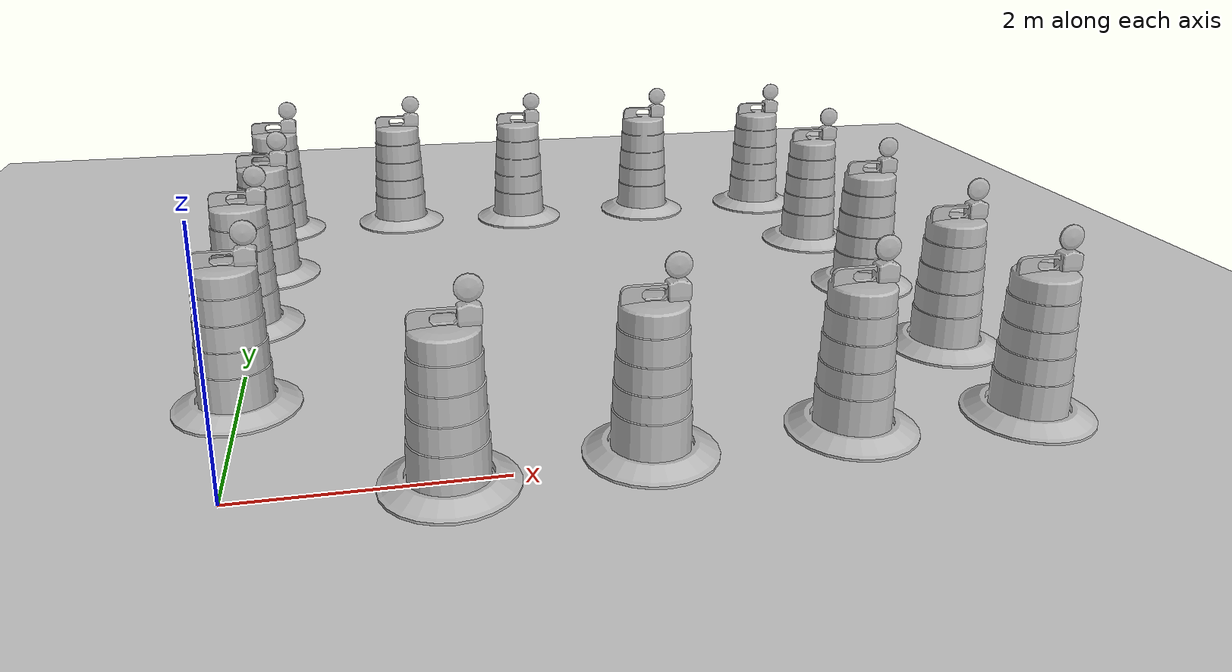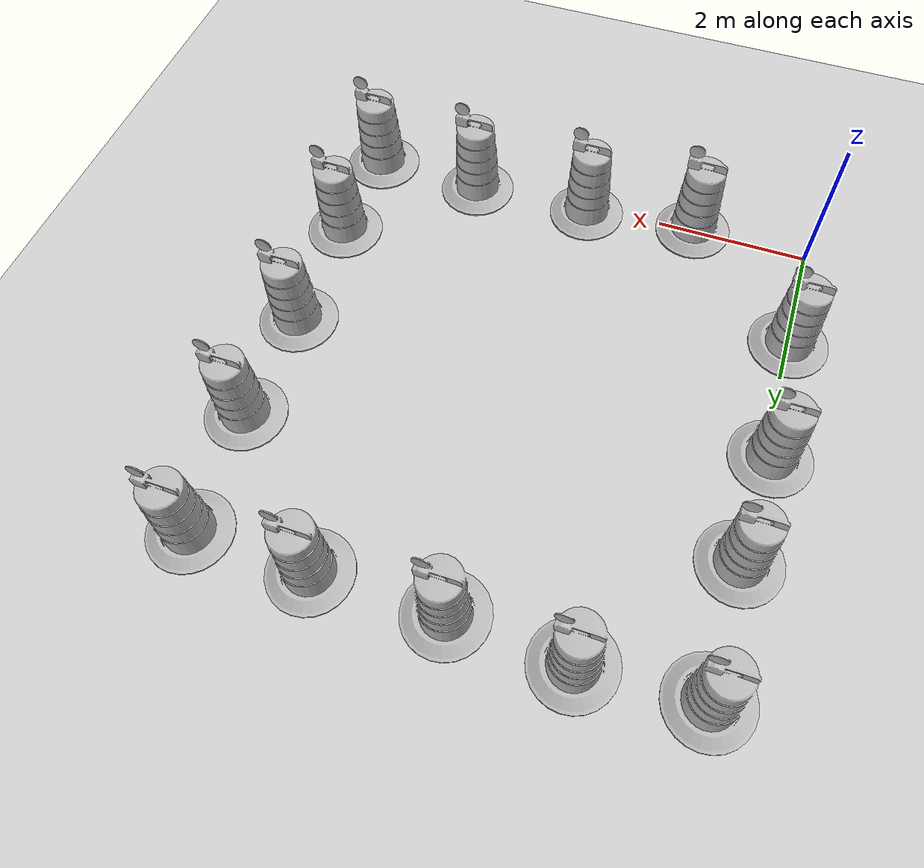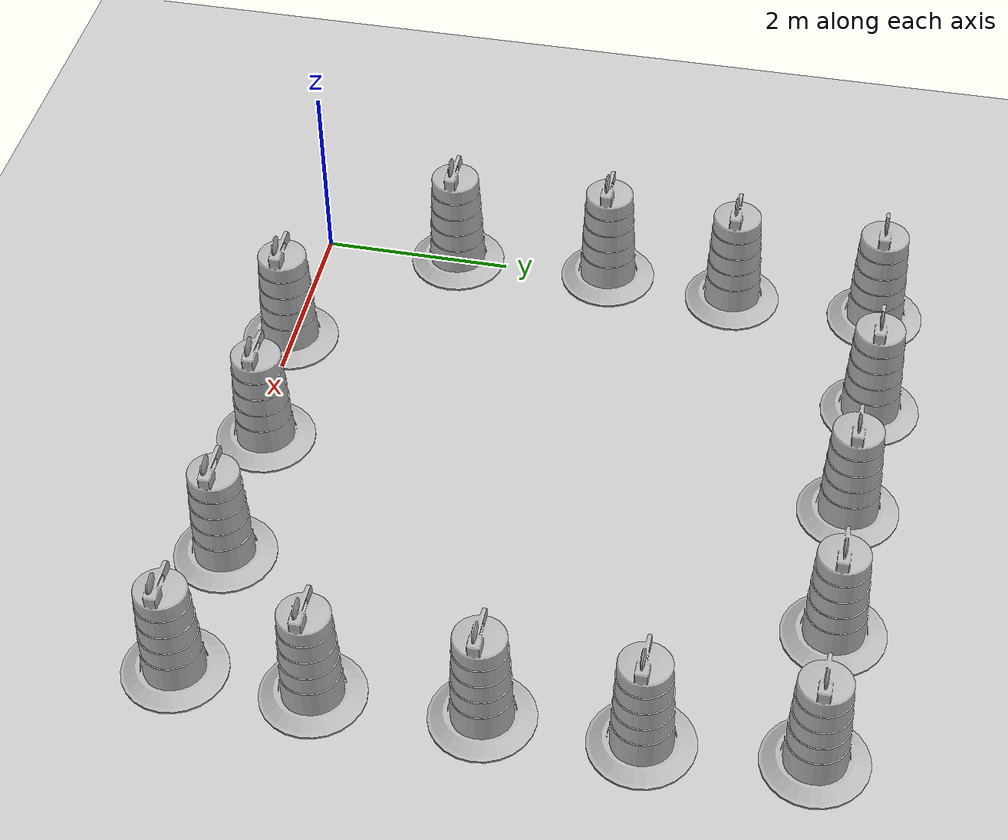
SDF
<sdf version="1.7">
 <world name="default">
  <light name="sun" type="directional">
   <pose>0 0 10 0 -0 0</pose>
   <diffuse>0.8 0.8 0.8 1</diffuse>
   <specular>0.2 0.2 0.2 1</specular>
   <attenuation>
    <range>1000</range>
    <constant>0.9</constant>
    <linear>0.01</linear>
    <quadratic>0.001</quadratic>
   </attenuation>
   <direction>-0.5 0.1 -0.9</direction>
   <spot><inner_angle>0</inner_angle><outer_angle>0</outer_angle><falloff>0</falloff></spot>
  </light>
  <model name="ground_plane">
   <static>1</static>
   <link name="link">
    <collision name="collision">
     <geometry><plane><normal>0 0 1</normal><size>100 100</size></plane></geometry>
     <surface><friction><ode><mu>100</mu><mu2>50</mu2></ode></friction></surface>
    </collision>
    <visual name="visual">
     <cast_shadows>0</cast_shadows>
     <geometry><plane><normal>0 0 1</normal><size>100 100</size></plane></geometry>
     <material>
      <script><uri>file://media/materials/scripts/gazebo.material</uri><name>Gazebo/Grey</name></script>
     </material>
    </visual>
   </link>
  </model>
  <gravity>0 0 -9.8</gravity>
  <magnetic_field>6e-06 2.3e-05 -4.2e-05</magnetic_field>
  <atmosphere type="adiabatic"/>
  <physics type="ode">
   <max_step_size>0.001</max_step_size>
   <real_time_factor>1</real_time_factor>
   <real_time_update_rate>1000</real_time_update_rate>
  </physics>
  <scene><ambient>0.4 0.4 0.4 1</ambient><background>0.7 0.7 0.7 1</background><shadows>1</shadows></scene>
  <audio><device>default</device></audio>
  <spherical_coordinates>
   <surface_model>EARTH_WGS84</surface_model>
   <latitude_deg>0</latitude_deg>
   <longitude_deg>0</longitude_deg>
   <elevation>0</elevation>
   <heading_deg>0</heading_deg>
  </spherical_coordinates>
  <model name="Construction Barrel">
   <link name="link">
    <inertial>
     <pose>0 0 0.4 0 -0 0</pose>
     <mass>500</mass>
     <inertia><ixx>51.2096</ixx><iyy>51.2096</iyy><izz>25</izz><ixy>0</ixy><ixz>0</ixz><iyz>0</iyz></inertia>
    </inertial>
    <collision name="collision">
     <geometry><mesh><uri>model://construction_barrel/meshes/construction_barrel.dae</uri></mesh></geometry>
    </collision>
    <visual name="visual">
     <geometry><mesh><uri>model://construction_barrel/meshes/construction_barrel.dae</uri></mesh></geometry>
    </visual>
   </link>
   <pose>6.09047 0.132263 -2e-06 -7e-06 -4e-06 -2.7e-05</pose>
  </model>
  <model name="Construction Barrel_clone">
   <link name="link">
    <inertial>
     <pose>0 0 0.4 0 -0 0</pose>
     <mass>500</mass>
     <inertia><ixx>51.2096</ixx><iyy>51.2096</iyy><izz>25</izz><ixy>0</ixy><ixz>0</ixz><iyz>0</iyz></inertia>
    </inertial>
    <collision name="collision">
     <geometry><mesh><uri>model://construction_barrel/meshes/construction_barrel.dae</uri></mesh></geometry>
    </collision>
    <visual name="visual">
     <geometry><mesh><uri>model://construction_barrel/meshes/construction_barrel.dae</uri></mesh></geometry>
    </visual>
   </link>
   <pose>0.058109 6.08151 -1e-06 3e-06 7e-06 -2.6e-05</pose>
  </model>
  <model name="Construction Barrel_clone_0">
   <link name="link">
    <inertial>
     <pose>0 0 0.4 0 -0 0</pose>
     <mass>500</mass>
     <inertia><ixx>51.2096</ixx><iyy>51.2096</iyy><izz>25</izz><ixy>0</ixy><ixz>0</ixz><iyz>0</iyz></inertia>
    </inertial>
    <collision name="collision">
     <geometry><mesh><uri>model://construction_barrel/meshes/construction_barrel.dae</uri></mesh></geometry>
    </collision>
    <visual name="visual">
     <geometry><mesh><uri>model://construction_barrel/meshes/construction_barrel.dae</uri></mesh></geometry>
    </visual>
   </link>
   <pose>5.9906 6.09478 -2e-06 4e-06 7e-06 -2.9e-05</pose>
  </model>
  <model name="Construction Barrel_clone_1">
   <link name="link">
    <inertial>
     <pose>0 0 0.4 0 -0 0</pose>
     <mass>500</mass>
     <inertia><ixx>51.2096</ixx><iyy>51.2096</iyy><izz>25</izz><ixy>0</ixy><ixz>0</ixz><iyz>0</iyz></inertia>
    </inertial>
    <collision name="collision">
     <geometry><mesh><uri>model://construction_barrel/meshes/construction_barrel.dae</uri></mesh></geometry>
    </collision>
    <visual name="visual">
     <geometry><mesh><uri>model://construction_barrel/meshes/construction_barrel.dae</uri></mesh></geometry>
    </visual>
   </link>
   <pose>6.0771 3.05647 -1e-06 4e-06 -1e-06 -2.9e-05</pose>
  </model>
  <model name="Construction Barrel_clone_2">
   <link name="link">
    <inertial>
     <pose>0 0 0.4 0 -0 0</pose>
     <mass>500</mass>
     <inertia><ixx>51.2096</ixx><iyy>51.2096</iyy><izz>25</izz><ixy>0</ixy><ixz>0</ixz><iyz>0</iyz></inertia>
    </inertial>
    <collision name="collision">
     <geometry><mesh><uri>model://construction_barrel/meshes/construction_barrel.dae</uri></mesh></geometry>
    </collision>
    <visual name="visual">
     <geometry><mesh><uri>model://construction_barrel/meshes/construction_barrel.dae</uri></mesh></geometry>
    </visual>
   </link>
   <pose>2.92266 6.08106 -2e-06 8e-06 -4e-06 -2.2e-05</pose>
  </model>
  <model name="Construction Barrel_clone_3">
   <link name="link">
    <inertial>
     <pose>0 0 0.4 0 -0 0</pose>
     <mass>500</mass>
     <inertia><ixx>51.2096</ixx><iyy>51.2096</iyy><izz>25</izz><ixy>0</ixy><ixz>0</ixz><iyz>0</iyz></inertia>
    </inertial>
    <collision name="collision">
     <geometry><mesh><uri>model://construction_barrel/meshes/construction_barrel.dae</uri></mesh></geometry>
    </collision>
    <visual name="visual">
     <geometry><mesh><uri>model://construction_barrel/meshes/construction_barrel.dae</uri></mesh></geometry>
    </visual>
   </link>
   <pose>-0.068076 3.13325 -3e-06 -1.1e-05 3e-06 -2.5e-05</pose>
  </model>
  <model name="Construction Barrel_clone_4">
   <link name="link">
    <inertial>
     <pose>0 0 0.4 0 -0 0</pose>
     <mass>500</mass>
     <inertia><ixx>51.2096</ixx><iyy>51.2096</iyy><izz>25</izz><ixy>0</ixy><ixz>0</ixz><iyz>0</iyz></inertia>
    </inertial>
    <collision name="collision">
     <geometry><mesh><uri>model://construction_barrel/meshes/construction_barrel.dae</uri></mesh></geometry>
    </collision>
    <visual name="visual">
     <geometry><mesh><uri>model://construction_barrel/meshes/construction_barrel.dae</uri></mesh></geometry>
    </visual>
   </link>
   <pose>3.03187 0.122218 -2e-06 -7e-06 -4e-06 -2.8e-05</pose>
  </model>
  <model name="Construction Barrel_clone_5">
   <link name="link">
    <inertial>
     <pose>0 0 0.4 0 -0 0</pose>
     <mass>500</mass>
     <inertia><ixx>51.2096</ixx><iyy>51.2096</iyy><izz>25</izz><ixy>0</ixy><ixz>0</ixz><iyz>0</iyz></inertia>
    </inertial>
    <collision name="collision">
     <geometry><mesh><uri>model://construction_barrel/meshes/construction_barrel.dae</uri></mesh></geometry>
    </collision>
    <visual name="visual">
     <geometry><mesh><uri>model://construction_barrel/meshes/construction_barrel.dae</uri></mesh></geometry>
    </visual>
   </link>
   <pose>4.62959 0.176237 -2e-06 7e-06 -4e-06 -2.4e-05</pose>
  </model>
  <model name="Construction Barrel_clone_6">
   <link name="link">
    <inertial>
     <pose>0 0 0.4 0 -0 0</pose>
     <mass>500</mass>
     <inertia><ixx>51.2096</ixx><iyy>51.2096</iyy><izz>25</izz><ixy>0</ixy><ixz>0</ixz><iyz>0</iyz></inertia>
    </inertial>
    <collision name="collision">
     <geometry><mesh><uri>model://construction_barrel/meshes/construction_barrel.dae</uri></mesh></geometry>
    </collision>
    <visual name="visual">
     <geometry><mesh><uri>model://construction_barrel/meshes/construction_barrel.dae</uri></mesh></geometry>
    </visual>
   </link>
   <pose>4.50481 6.10442 -1e-06 3e-06 7e-06 -2.6e-05</pose>
  </model>
  <model name="Construction Barrel_clone_7">
   <link name="link">
    <inertial>
     <pose>0 0 0.4 0 -0 0</pose>
     <mass>500</mass>
     <inertia><ixx>51.2096</ixx><iyy>51.2096</iyy><izz>25</izz><ixy>0</ixy><ixz>0</ixz><iyz>0</iyz></inertia>
    </inertial>
    <collision name="collision">
     <geometry><mesh><uri>model://construction_barrel/meshes/construction_barrel.dae</uri></mesh></geometry>
    </collision>
    <visual name="visual">
     <geometry><mesh><uri>model://construction_barrel/meshes/construction_barrel.dae</uri></mesh></geometry>
    </visual>
   </link>
   <pose>1.47772 6.16082 -1e-06 3e-06 7e-06 -2.6e-05</pose>
  </model>
  <model name="Construction Barrel_clone_8">
   <link name="link">
    <inertial>
     <pose>0 0 0.4 0 -0 0</pose>
     <mass>500</mass>
     <inertia><ixx>51.2096</ixx><iyy>51.2096</iyy><izz>25</izz><ixy>0</ixy><ixz>0</ixz><iyz>0</iyz></inertia>
    </inertial>
    <collision name="collision">
     <geometry><mesh><uri>model://construction_barrel/meshes/construction_barrel.dae</uri></mesh></geometry>
    </collision>
    <visual name="visual">
     <geometry><mesh><uri>model://construction_barrel/meshes/construction_barrel.dae</uri></mesh></geometry>
    </visual>
   </link>
   <pose>6.08895 4.53278 -0 0 -0 -2.8e-05</pose>
  </model>
  <model name="Construction Barrel_clone_9">
   <link name="link">
    <inertial>
     <pose>0 0 0.4 0 -0 0</pose>
     <mass>500</mass>
     <inertia><ixx>51.2096</ixx><iyy>51.2096</iyy><izz>25</izz><ixy>0</ixy><ixz>0</ixz><iyz>0</iyz></inertia>
    </inertial>
    <collision name="collision">
     <geometry><mesh><uri>model://construction_barrel/meshes/construction_barrel.dae</uri></mesh></geometry>
    </collision>
    <visual name="visual">
     <geometry><mesh><uri>model://construction_barrel/meshes/construction_barrel.dae</uri></mesh></geometry>
    </visual>
   </link>
   <pose>6.11824 1.46792 0 0 0 -2.7e-05</pose>
  </model>
  <model name="Construction Barrel_clone_10">
   <link name="link">
    <inertial>
     <pose>0 0 0.4 0 -0 0</pose>
     <mass>500</mass>
     <inertia><ixx>51.2096</ixx><iyy>51.2096</iyy><izz>25</izz><ixy>0</ixy><ixz>0</ixz><iyz>0</iyz></inertia>
    </inertial>
    <collision name="collision">
     <geometry><mesh><uri>model://construction_barrel/meshes/construction_barrel.dae</uri></mesh></geometry>
    </collision>
    <visual name="visual">
     <geometry><mesh><uri>model://construction_barrel/meshes/construction_barrel.dae</uri></mesh></geometry>
    </visual>
   </link>
   <pose>0.038674 4.52493 0 0 0 -2.8e-05</pose>
  </model>
  <model name="Construction Barrel_clone_11">
   <link name="link">
    <inertial>
     <pose>0 0 0.4 0 -0 0</pose>
     <mass>500</mass>
     <inertia><ixx>51.2096</ixx><iyy>51.2096</iyy><izz>25</izz><ixy>0</ixy><ixz>0</ixz><iyz>0</iyz></inertia>
    </inertial>
    <collision name="collision">
     <geometry><mesh><uri>model://construction_barrel/meshes/construction_barrel.dae</uri></mesh></geometry>
    </collision>
    <visual name="visual">
     <geometry><mesh><uri>model://construction_barrel/meshes/construction_barrel.dae</uri></mesh></geometry>
    </visual>
   </link>
   <pose>-0.009844 1.45549 -2e-06 7e-06 -4e-06 -2.6e-05</pose>
  </model>
  <model name="Construction Barrel_clone_12">
   <link name="link">
    <inertial>
     <pose>0 0 0.4 0 -0 0</pose>
     <mass>500</mass>
     <inertia><ixx>51.2096</ixx><iyy>51.2096</iyy><izz>25</izz><ixy>0</ixy><ixz>0</ixz><iyz>0</iyz></inertia>
    </inertial>
    <collision name="collision">
     <geometry><mesh><uri>model://construction_barrel/meshes/construction_barrel.dae</uri></mesh></geometry>
    </collision>
    <visual name="visual">
     <geometry><mesh><uri>model://construction_barrel/meshes/construction_barrel.dae</uri></mesh></geometry>
    </visual>
   </link>
   <pose>1.55082 -0.031883 -2e-06 7e-06 -4e-06 -3.6e-05</pose>
  </model>
 </world>
</sdf>
